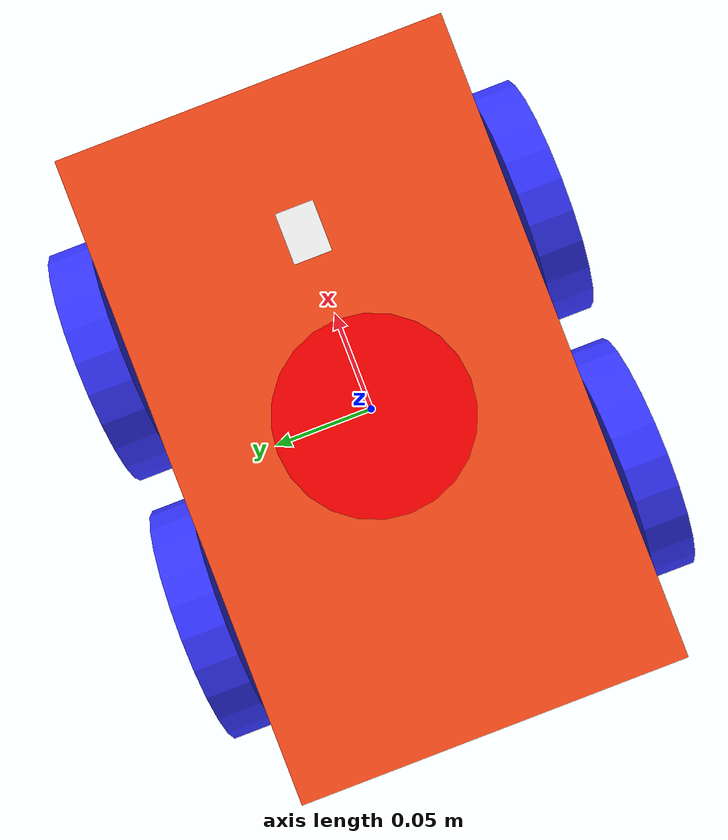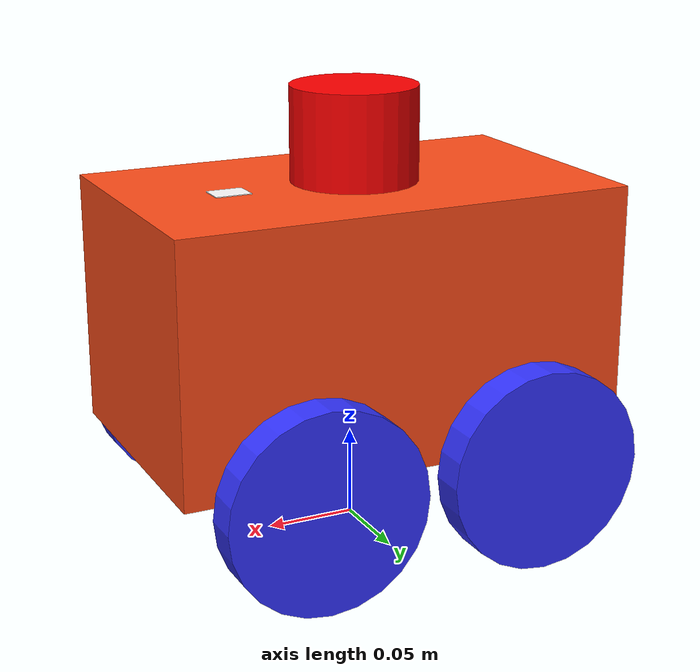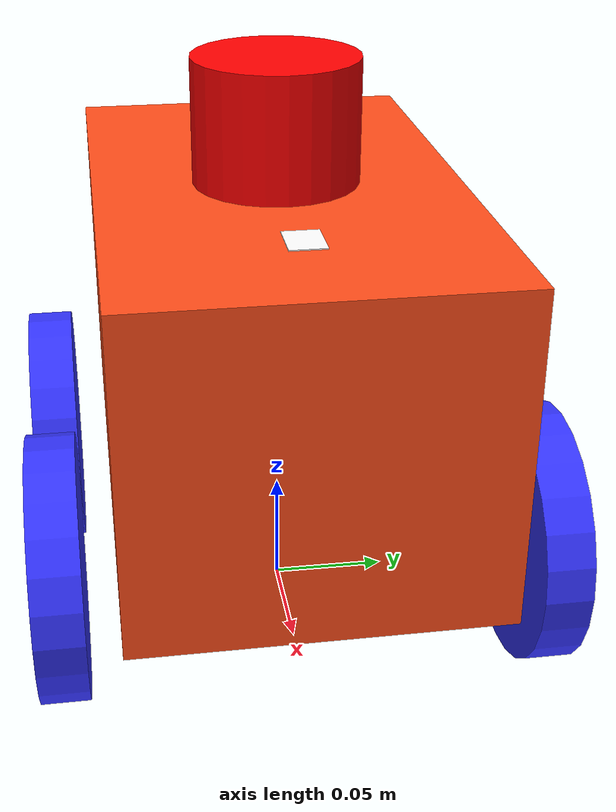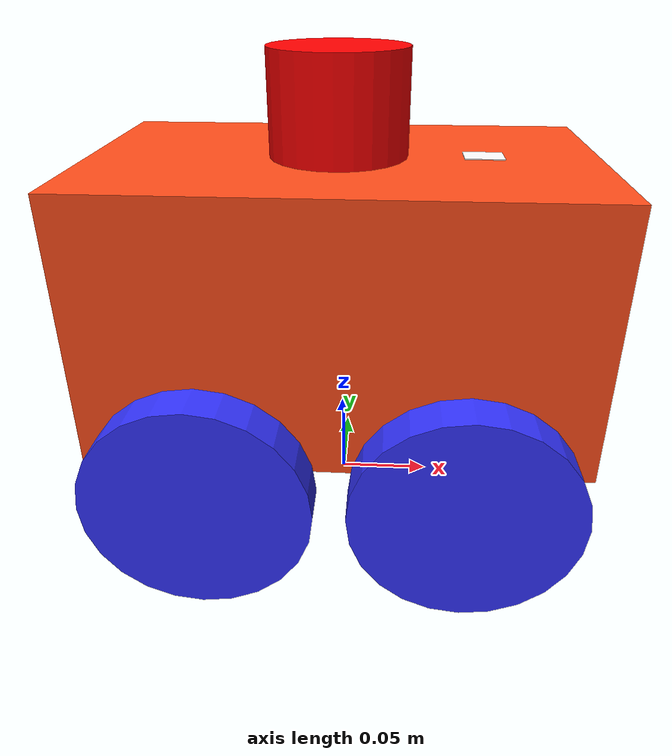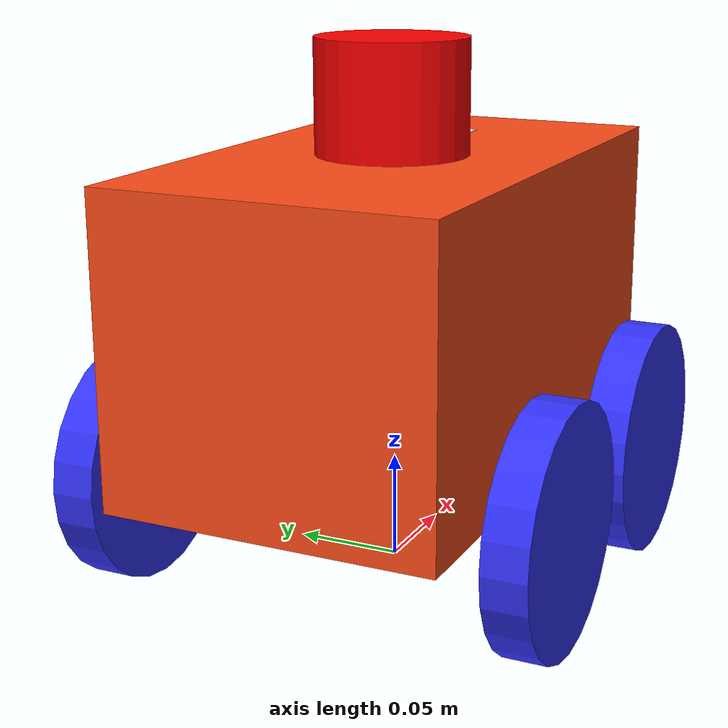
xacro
<?xml version="1.0"?>
<robot xmlns:xacro="http://www.ros.org/wiki/xacro"  name="asitlorbot8">

    <xacro:arg name="is_sim" default="true"/>
    <!-- ROBOT DESCRIPTION - LINKS AND JOINTS -->
    <xacro:include filename="robot_core.xacro"/>
    <xacro:include filename="ros2_control.xacro"/>
    <xacro:include filename="lidar.xacro"/>
    <xacro:include filename="imu.xacro"/>

</robot>

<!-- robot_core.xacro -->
<robot xmlns:xacro="http://www.ros.org/wiki/xacro"  name="asitlorbot8">

    <xacro:arg name="is_sim" default="false"/>

    <xacro:include filename="inertial_macros.xacro"/>

    <material name="white">
        <color rgba="1 1 1 1" />
    </material>

    <material name="orange">
        <color rgba="1 0.3 0.1 1"/>
    </material>

    <material name="blue">
        <color rgba="0.2 0.2 1 1"/>
    </material>

    <material name="black">
        <color rgba="0 0 0 1"/>
    </material>

    <material name="red">
        <color rgba="1 0 0 1"/>
    </material>

    <!-- BASE LINK -->

    <link name="base_footprint">

    </link>

    <!-- BASE_FOOTPRINT LINK -->

    <joint name="base_footprint_joint" type="fixed">
        <parent link="base_footprint"/>
        <child link="base_link"/>
        <origin xyz="0 0 0.055" rpy="0 0 0"/>
    </joint>

    <link name="base_link">

    </link>

    <!-- CHASSIS LINK -->

    <joint name="chassis_joint" type="fixed">
        <parent link="base_link"/>
        <child link="chassis"/>
        <origin xyz="-0.1275 0 0"/>
    </joint>

    <link name="chassis">
        <visual>
            <origin xyz="0.1275 0 0.07"/>
            <geometry>
                <box size="0.255 0.153 0.14"/>
            </geometry>
            <material name="orange"/>
        </visual>
        <!-- COLLISION TAG DEFINES VOLUME OF CERTAIN LINK -->
        <collision>
            <origin xyz="0.1275 0 0.07"/>
            <geometry>
                <box size="0.255 0.153 0.14"/>
            </geometry>
        </collision>
        <!-- INERTIA TAG :RESISTANCE TO MOTION -->
        <xacro:inertial_box mass="0.5" x="0.255" y="0.153" z="0.14">
            <origin xyz="0.1275 0 0.07" rpy="0 0 0"/>
        </xacro:inertial_box>
    </link>
    <gazebo reference="chassis">
        <material>Gazebo/Orange</material>
    </gazebo>

    <!-- LEFT BACK WHEEL LINK -->

    <joint name="left_back_wheel_hinge" type="continuous">
        <parent link="base_link"/>
        <child link="left_back_wheel"/>
        <origin xyz="0.0625 0.1 0" rpy="-${pi/2} 0 0" />
        <axis xyz="0 0 1"/>
        <limit effort="10000.0" velocity="20.0" />
        <dynamics damping="0.0"/>
        <joint_properties friction="0.0" />
    </joint>

    <link name="left_back_wheel">
        <visual>
            <geometry>
                <cylinder radius="0.055" length="0.02"/>
            </geometry>
            <material name="blue"/>
        </visual>
        <collision>
            <geometry>
                <sphere radius="0.055"/>
            </geometry>
            <surface>
                <friction>
                    <ode>
                        <mu>1.0</mu>          <!-- Moderate grip in the primary direction -->
                        <mu2>1.0</mu2>        <!-- Moderate grip in the secondary direction -->
                        <fdir1>1 0 0</fdir1>  <!-- Aligns primary friction with the x-axis (forward direction) -->
                        <slip1>0.0</slip1>   <!-- Small slip value for slight sliding capability -->
                        <slip2>0.0</slip2>   <!-- Small slip value for slight sliding capability -->
                    </ode>
                </friction>
            </surface>
        </collision>
        <xacro:inertial_cylinder mass="0.05" length="0.02" radius="0.055">
            <origin xyz="0 0 0" rpy="0 0 0"/>
        </xacro:inertial_cylinder>

    </link>
    <gazebo reference="left_back_wheel">
        <material>Gazebo/Blue</material>
        <mu1>1.0</mu1>
        <mu2>1.0</mu2>
        <kp>1000000000000.0</kp>
        <kd>10.0</kd>
        <minDepth>0.0001</minDepth>
        <maxVel>0.0</maxVel>
        <fdir1>1 0 0</fdir1>
        <slip1>0.0</slip1>   <!-- Small slip value for slight sliding capability -->
        <slip2>0.0</slip2>
    </gazebo>

    <!-- LEFT FRONT WHEEL LINK -->

    <joint name="left_front_wheel_hinge" type="continuous">
        <parent link="base_link"/>
        <child link="left_front_wheel"/>
        <origin xyz="-0.0625 0.1 0" rpy="-${pi/2} 0 0" />
        <axis xyz="0 0 1"/>
        <limit effort="10000.0" velocity="20.0" />
        <dynamics damping="0.0"/>
        <joint_properties friction="0.0" />
    </joint>

    <link name="left_front_wheel">
        <visual>
            <geometry>
                <cylinder radius="0.055" length="0.02"/>
            </geometry>
            <material name="blue"/>
        </visual>
        <collision>
            <geometry>
                <sphere radius="0.055"/>
            </geometry>
            <surface>
                <friction>
                    <ode>
                        <mu>1.0</mu>          <!-- Moderate grip in the primary direction -->
                        <mu2>1.0</mu2>        <!-- Moderate grip in the secondary direction -->
                        <fdir1>1 0 0</fdir1>  <!-- Aligns primary friction with the x-axis (forward direction) -->
                        <slip1>0.0</slip1>   <!-- Small slip value for slight sliding capability -->
                        <slip2>0.0</slip2>   <!-- Small slip value for slight sliding capability -->
                    </ode>
                </friction>
            </surface>
        </collision>
        <xacro:inertial_cylinder mass="0.05" length="0.02" radius="0.055">
            <origin xyz="0 0 0" rpy="0 0 0"/>
        </xacro:inertial_cylinder>
    </link>
    <gazebo reference="left_front_wheel">
        <material>Gazebo/Blue</material>
        <mu1>1.0</mu1>
        <mu2>1.0</mu2>
        <kp>1000000000000.0</kp>
        <kd>10.0</kd>
        <minDepth>0.0001</minDepth>
        <maxVel>0.0</maxVel>
        <fdir1>1 0 0</fdir1>
        <slip1>0.0</slip1>   <!-- Small slip value for slight sliding capability -->
        <slip2>0.0</slip2>
    </gazebo>

    <!-- RIGHT BACK WHEEL -->

    <joint name="right_back_wheel_hinge" type="continuous">
        <parent link="base_link"/>
        <child link="right_back_wheel"/>
        <origin xyz="0.0625 -0.1 0" rpy="${pi/2} 0 0" />
        <axis xyz="0 0 -1"/>
        <limit effort="10000.0" velocity="20.0" />
        <dynamics damping="0.0"/>
        <joint_properties friction="0.0" />
    </joint>

    <link name="right_back_wheel">
        <visual>
            <geometry>
                <cylinder radius="0.055" length="0.02"/>
            </geometry>
            <material name="blue"/>
        </visual>
        <collision>
            <geometry>
                <sphere radius="0.055"/>
            </geometry>
            <surface>
                <friction>
                    <ode>
                        <mu>1.0</mu>          <!-- Moderate grip in the primary direction -->
                        <mu2>1.0</mu2>        <!-- Moderate grip in the secondary direction -->
                        <fdir1>1 0 0</fdir1>  <!-- Aligns primary friction with the x-axis (forward direction) -->
                        <slip1>0.0</slip1>   <!-- Small slip value for slight sliding capability -->
                        <slip2>0.0</slip2>   <!-- Small slip value for slight sliding capability -->
                    </ode>
                </friction>
            </surface>
        </collision>
        <xacro:inertial_cylinder mass="0.05" length="0.02" radius="0.055">
            <origin xyz="0 0 0" rpy="0 0 0"/>
        </xacro:inertial_cylinder>
    </link>
    <gazebo reference="right_back_wheel">
        <material>Gazebo/Blue</material>
        <mu1>1.0</mu1>
        <mu2>1.0</mu2>
        <kp>1000000000000.0</kp>
        <kd>10.0</kd>
        <minDepth>0.0001</minDepth>
        <maxVel>0.0</maxVel>
        <fdir1>1 0 0</fdir1>
        <slip1>0.0</slip1>   <!-- Small slip value for slight sliding capability -->
        <slip2>0.0</slip2>
    </gazebo>

    <!-- RIGHT FRONT WHEEL -->

    <joint name="right_front_wheel_hinge" type="continuous">
        <parent link="base_link"/>
        <child link="right_front_wheel"/>
        <origin xyz="-0.0625 -0.1 0" rpy="${pi/2} 0 0" />
        <axis xyz="0 0 -1"/>
        <limit effort="10000.0" velocity="20.0" />
        <dynamics damping="0.0"/>
        <joint_properties friction="0.0" />
    </joint>

    <link name="right_front_wheel">
        <visual>
            <geometry>
                <cylinder radius="0.055" length="0.02"/>
            </geometry>
            <material name="blue"/>
        </visual>
        <collision>
            <geometry>
                <sphere radius="0.055"/>
            </geometry>
            <surface>
                <friction>
                    <ode>
                        <mu>1.0</mu>          <!-- Moderate grip in the primary direction -->
                        <mu2>1.0</mu2>        <!-- Moderate grip in the secondary direction -->
                        <fdir1>1 0 0</fdir1>  <!-- Aligns primary friction with the x-axis (forward direction) -->
                        <slip1>0.0</slip1>   <!-- Small slip value for slight sliding capability -->
                        <slip2>0.0</slip2>   <!-- Small slip value for slight sliding capability -->
                    </ode>
                </friction>
            </surface>
        </collision>
        <xacro:inertial_cylinder mass="0.05" length="0.02" radius="0.055">
            <origin xyz="0 0 0" rpy="0 0 0"/>
        </xacro:inertial_cylinder>
    </link>
    <gazebo reference="right_front_wheel">
        <material>Gazebo/Blue</material>
        <mu1>1.0</mu1>
        <mu2>1.0</mu2>
        <kp>1000000000000.0</kp>
        <kd>10.0</kd>
        <minDepth>0.0001</minDepth>
        <maxVel>0.0</maxVel>
        <fdir1>1 0 0</fdir1>
        <slip1>0.0</slip1>   <!-- Small slip value for slight sliding capability -->
        <slip2>0.0</slip2>
    </gazebo>

</robot>

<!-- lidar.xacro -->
<robot xmlns:xacro="http://www.ros.org/wiki/xacro" >

    <joint name="laser_joint" type="fixed">
        <parent link="chassis"/>
        <child link="laser_frame"/>
        <origin xyz="0.125 0 0.166" rpy="0 0 0"/>
    </joint>

    <link name="laser_frame">
        <visual>
            <geometry>
                <cylinder radius="0.035" length="0.052"/>
            </geometry>
            <material name="red"/>
        </visual>
        <collision>
            <geometry>
                <cylinder radius="0.035" length="0.052"/>
            </geometry>
        </collision>
        <xacro:inertial_cylinder mass="0.17" length="0.035" radius="0.052">
            <origin xyz="0 0 0" rpy="0 0 0"/>
        </xacro:inertial_cylinder>
    </link>

    <gazebo reference="laser_frame">
        <material>Gazebo/Red</material>

        <sensor name="laser" type="ray">
            <pose> 0 0 0 0 0 0 </pose>
            <visualize>false</visualize>
            <update_rate>10</update_rate>
            <ray>
                <scan>
                    <horizontal>
                        <samples>360</samples>
                        <min_angle>-3.14</min_angle>
                        <max_angle>3.14</max_angle>
                    </horizontal>
                </scan>
                <range>
                    <min>0.05</min>
                    <max>6</max>
                </range>
                <noise>
                    <type>gaussian</type>
                    <mean>0.0</mean>
                    <stddev>0.01</stddev>
                </noise>
            </ray>
            <plugin name="laser_controller" filename="libgazebo_ros_ray_sensor.so">
                <ros>
                    <argument>--ros-args --remap ~/out:=scan</argument>
                </ros>
                <output_type>sensor_msgs/LaserScan</output_type>
                <frame_name>laser_frame</frame_name>
            </plugin>
        </sensor>
    </gazebo>

</robot>

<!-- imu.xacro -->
<robot xmlns:xacro="http://www.ros.org/wiki/xacro" >

    <!-- IMU LINK -->
    <joint name="imu_joint" type="fixed">
        <parent link="base_link"/>
        <child link="imu_link"/>
        <origin xyz="0.07 0 0.14"/>
    </joint>

    <link name="imu_link">
        <visual>
            <origin xyz="0 0 0"/>
            <geometry>
                <box size="0.02 0.015 0.001"/>
            </geometry>
            <material name="white"/>
        </visual>
        <!-- COLLISION TAG DEFINES VOLUME OF CERTAIN LINK -->
        <collision>
            <origin xyz="0 0 0"/>
            <geometry>
                <box size="0.02 0.015 0.001"/>
            </geometry>
        </collision>
        <!-- INERTIA TAG :RESISTANCE TO MOTION -->
        <xacro:inertial_box mass="0.005" x="0.02" y="0.015" z="0.001">
            <origin xyz="0 0 0" rpy="0 0 0"/>
        </xacro:inertial_box>
    </link>

    <gazebo reference="imu_link">
        <material>Gazebo/White</material>
        <gravity>true</gravity>
        <sensor name="imu" type="imu">
            <always_on>true</always_on>
            <update_rate>1</update_rate>
            <visualize>true</visualize>
            <imu>
                <angular_velocity>
                    <x>
                        <noise type="gaussian">
                            <mean>0.0</mean>
                            <stddev>2e-4</stddev>
                        </noise>
                    </x>
                    <y>
                        <noise type="gaussian">
                            <mean>0.0</mean>
                            <stddev>2e-4</stddev>
                        </noise>
                    </y>
                    <z>
                        <noise type="gaussian">
                            <mean>0.0</mean>
                            <stddev>2e-4</stddev>
                        </noise>
                    </z>
                </angular_velocity>
                <linear_acceleration>
                    <x>
                        <noise type="gaussian">
                            <mean>0.0</mean>
                            <stddev>1.7e-2</stddev>
                        </noise>
                    </x>
                    <y>
                        <noise type="gaussian">
                            <mean>0.0</mean>
                            <stddev>1.7e-2</stddev>
                        </noise>
                    </y>
                    <z>
                        <noise type="gaussian">
                            <mean>0.0</mean>
                            <stddev>1.7e-2</stddev>
                        </noise>
                    </z>
                </linear_acceleration>
            </imu>
            <plugin name="imu" filename="libgazebo_ros_imu_sensor.so">
                <xyzOffset>0 0 0</xyzOffset>
                <rpyOffset>0 0 0</rpyOffset>
            </plugin>
        </sensor>
    </gazebo>

</robot>
